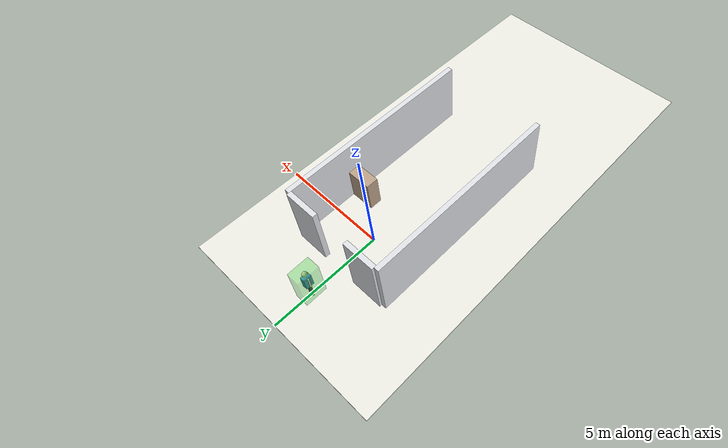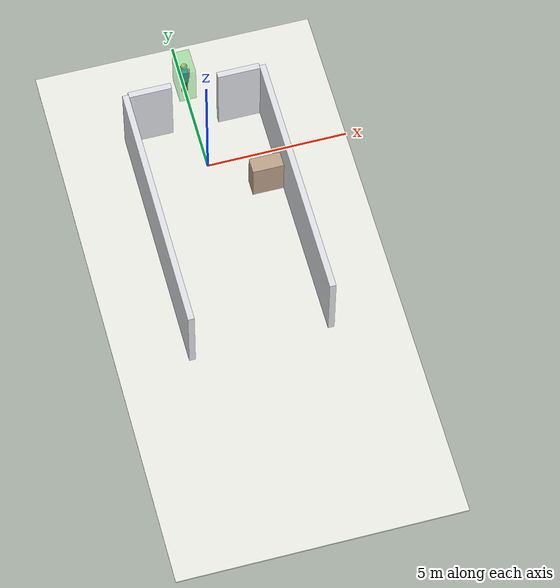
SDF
<sdf version="1.7">
 <world name="elevator_yield">
  <physics type="ode">
   <max_step_size>0.015625</max_step_size>
   <real_time_update_rate>64</real_time_update_rate>
  </physics>
  <gravity>0 0 -9.8</gravity>
  <scene>
   <ambient>0.80 0.80 0.80 1</ambient>
   <background>0.95 0.96 0.97 1</background>
   <shadows>true</shadows>
  </scene>
  <light name="sun" type="directional">
   <pose>0 0 10 0 0 0</pose>
   <diffuse>0.9 0.9 0.9 1</diffuse>
   <specular>0.2 0.2 0.2 1</specular>
   <attenuation>
    <range>1000</range>
    <constant>0.9</constant>
    <linear>0.01</linear>
    <quadratic>0.001</quadratic>
   </attenuation>
   <direction>-0.25 0.10 -0.95</direction>
  </light>
  <model name="scene_floor">
   <static>true</static>
   <link name="link">
    <collision name="collision">
     <pose>0 -5 -0.03 0 0 0</pose>
     <geometry><box><size>10 20 0.06</size></box></geometry>
    </collision>
    <visual name="visual">
     <pose>0 -5 -0.03 0 0 0</pose>
     <geometry><box><size>10 20 0.06</size></box></geometry>
     <material><ambient>0.88 0.88 0.86 1</ambient><diffuse>0.93 0.93 0.90 1</diffuse></material>
    </visual>
   </link>
  </model>
  <model name="left_door_side_wall">
   <static>true</static>
   <link name="link">
    <collision name="collision">
     <pose>-1.57 1.74 1.45 0 0 0</pose>
     <geometry><box><size>1.50 0.22 2.90</size></box></geometry>
    </collision>
    <visual name="visual">
     <pose>-1.57 1.74 1.45 0 0 0</pose>
     <geometry><box><size>1.50 0.22 2.90</size></box></geometry>
     <material><ambient>0.82 0.83 0.85 1</ambient><diffuse>0.88 0.89 0.91 1</diffuse></material>
    </visual>
   </link>
  </model>
  <model name="right_door_side_wall">
   <static>true</static>
   <link name="link">
    <collision name="collision">
     <pose>1.57 1.74 1.45 0 0 0</pose>
     <geometry><box><size>1.50 0.22 2.90</size></box></geometry>
    </collision>
    <visual name="visual">
     <pose>1.57 1.74 1.45 0 0 0</pose>
     <geometry><box><size>1.50 0.22 2.90</size></box></geometry>
     <material><ambient>0.82 0.83 0.85 1</ambient><diffuse>0.88 0.89 0.91 1</diffuse></material>
    </visual>
   </link>
  </model>
  <model name="human_in_elevator">
   <static>false</static>
   <pose>0.000004 3.219430 0.474502 0 0 -1.556373</pose>
   <link name="torso_link">
    <gravity>false</gravity>
    <pose>0 0 0.56 0 0 0</pose>
    <inertial>
     <mass>8.0</mass>
     <inertia><ixx>0.25</ixx><iyy>0.20</iyy><izz>0.18</izz><ixy>0</ixy><ixz>0</ixz><iyz>0</iyz></inertia>
    </inertial>
    <visual name="torso_visual">
     <geometry><box><size>0.34 0.22 0.62</size></box></geometry>
     <material><ambient>0.18 0.44 0.74 1</ambient><diffuse>0.24 0.52 0.80 1</diffuse></material>
    </visual>
   </link>
   <link name="head_link">
    <gravity>false</gravity>
    <pose>0 0 1.07 0 0 0</pose>
    <inertial>
     <mass>1.5</mass>
     <inertia><ixx>0.02</ixx><iyy>0.02</iyy><izz>0.02</izz><ixy>0</ixy><ixz>0</ixz><iyz>0</iyz></inertia>
    </inertial>
    <visual name="head_visual">
     <geometry><sphere><radius>0.11</radius></sphere></geometry>
     <material><ambient>0.86 0.73 0.63 1</ambient><diffuse>0.90 0.78 0.68 1</diffuse></material>
    </visual>
   </link>
   <link name="left_leg_link">
    <gravity>false</gravity>
    <pose>0.00 0.06 0.29 0 0 0</pose>
    <inertial>
     <mass>2.0</mass>
     <inertia><ixx>0.10</ixx><iyy>0.03</iyy><izz>0.10</izz><ixy>0</ixy><ixz>0</ixz><iyz>0</iyz></inertia>
    </inertial>
    <visual name="left_leg_visual">
     <pose>0 0 -0.38 0 0 0</pose>
     <geometry><cylinder><radius>0.055</radius><length>0.76</length></cylinder></geometry>
     <material><ambient>0.14 0.16 0.20 1</ambient><diffuse>0.18 0.20 0.26 1</diffuse></material>
    </visual>
   </link>
   <link name="right_leg_link">
    <gravity>false</gravity>
    <pose>0.00 -0.06 0.29 0 0 0</pose>
    <inertial>
     <mass>2.0</mass>
     <inertia><ixx>0.10</ixx><iyy>0.03</iyy><izz>0.10</izz><ixy>0</ixy><ixz>0</ixz><iyz>0</iyz></inertia>
    </inertial>
    <visual name="right_leg_visual">
     <pose>0 0 -0.38 0 0 0</pose>
     <geometry><cylinder><radius>0.055</radius><length>0.76</length></cylinder></geometry>
     <material><ambient>0.14 0.16 0.20 1</ambient><diffuse>0.18 0.20 0.26 1</diffuse></material>
    </visual>
   </link>
   <link name="left_arm_link">
    <gravity>false</gravity>
    <pose>0.00 0.15 0.85 0 0 0</pose>
    <inertial>
     <mass>1.2</mass>
     <inertia><ixx>0.04</ixx><iyy>0.015</iyy><izz>0.04</izz><ixy>0</ixy><ixz>0</ixz><iyz>0</iyz></inertia>
    </inertial>
    <visual name="left_arm_visual">
     <pose>0 0 -0.28 0 0 0</pose>
     <geometry><cylinder><radius>0.04</radius><length>0.56</length></cylinder></geometry>
     <material><ambient>0.86 0.73 0.63 1</ambient><diffuse>0.90 0.78 0.68 1</diffuse></material>
    </visual>
   </link>
   <link name="right_arm_link">
    <gravity>false</gravity>
    <pose>0.00 -0.15 0.85 0 0 0</pose>
    <inertial>
     <mass>1.2</mass>
     <inertia><ixx>0.04</ixx><iyy>0.015</iyy><izz>0.04</izz><ixy>0</ixy><ixz>0</ixz><iyz>0</iyz></inertia>
    </inertial>
    <visual name="right_arm_visual">
     <pose>0 0 -0.28 0 0 0</pose>
     <geometry><cylinder><radius>0.04</radius><length>0.56</length></cylinder></geometry>
     <material><ambient>0.86 0.73 0.63 1</ambient><diffuse>0.90 0.78 0.68 1</diffuse></material>
    </visual>
   </link>
   <joint name="head_joint" type="fixed"><parent>torso_link</parent><child>head_link</child></joint>
   <joint name="left_leg_joint" type="revolute">
    <parent>torso_link</parent>
    <child>left_leg_link</child>
    <axis>
     <xyz>0 1 0</xyz>
     <limit><lower>-0.50</lower><upper>0.50</upper></limit>
     <dynamics><damping>1.0</damping></dynamics>
    </axis>
   </joint>
   <joint name="right_leg_joint" type="revolute">
    <parent>torso_link</parent>
    <child>right_leg_link</child>
    <axis>
     <xyz>0 1 0</xyz>
     <limit><lower>-0.50</lower><upper>0.50</upper></limit>
     <dynamics><damping>1.0</damping></dynamics>
    </axis>
   </joint>
   <joint name="left_arm_joint" type="revolute">
    <parent>torso_link</parent>
    <child>left_arm_link</child>
    <axis>
     <xyz>0 1 0</xyz>
     <limit><lower>-0.90</lower><upper>0.90</upper></limit>
     <dynamics><damping>0.8</damping></dynamics>
    </axis>
   </joint>
   <joint name="right_arm_joint" type="revolute">
    <parent>torso_link</parent>
    <child>right_arm_link</child>
    <axis>
     <xyz>0 1 0</xyz>
     <limit><lower>-0.90</lower><upper>0.90</upper></limit>
     <dynamics><damping>0.8</damping></dynamics>
    </axis>
   </joint>
   <plugin filename="gz-sim-joint-position-controller-system" name="gz::sim::systems::JointPositionController">
    <joint_name>left_arm_joint</joint_name>
    <topic>/human_in_elevator/left_arm_joint_cmd</topic>
    <p_gain>12</p_gain>
    <d_gain>0.8</d_gain>
    <cmd_max>20</cmd_max>
    <cmd_min>-20</cmd_min>
   </plugin>
   <plugin filename="gz-sim-joint-position-controller-system" name="gz::sim::systems::JointPositionController">
    <joint_name>right_arm_joint</joint_name>
    <topic>/human_in_elevator/right_arm_joint_cmd</topic>
    <p_gain>12</p_gain>
    <d_gain>0.8</d_gain>
    <cmd_max>20</cmd_max>
    <cmd_min>-20</cmd_min>
   </plugin>
   <plugin filename="gz-sim-joint-position-controller-system" name="gz::sim::systems::JointPositionController">
    <joint_name>left_leg_joint</joint_name>
    <topic>/human_in_elevator/left_leg_joint_cmd</topic>
    <p_gain>14</p_gain>
    <d_gain>1.0</d_gain>
    <cmd_max>20</cmd_max>
    <cmd_min>-20</cmd_min>
   </plugin>
   <plugin filename="gz-sim-joint-position-controller-system" name="gz::sim::systems::JointPositionController">
    <joint_name>right_leg_joint</joint_name>
    <topic>/human_in_elevator/right_leg_joint_cmd</topic>
    <p_gain>14</p_gain>
    <d_gain>1.0</d_gain>
    <cmd_max>20</cmd_max>
    <cmd_min>-20</cmd_min>
   </plugin>
  </model>
  <model name="human_collision_proxy">
   <static>true</static>
   <pose>0.000004 3.219430 0.960000 0 0 -1.556373</pose>
   <link name="collision_link">
    <collision name="body_collision"><geometry><box><size>0.95 0.60 1.72</size></box></geometry></collision>
    <visual name="debug_visual">
     <geometry><box><size>0.95 0.60 1.72</size></box></geometry>
     <material><ambient>0.2 0.8 0.2 0.35</ambient><diffuse>0.2 0.8 0.2 0.35</diffuse></material>
     <transparency>0.65</transparency>
    </visual>
   </link>
  </model>
  <model name="left_corridor_wall">
   <static>true</static>
   <link name="link">
    <collision name="collision">
     <pose>-2.43 -2.75 1.45 0 0 0</pose>
     <geometry><box><size>0.22 9.00 2.90</size></box></geometry>
    </collision>
    <visual name="visual">
     <pose>-2.43 -2.75 1.45 0 0 0</pose>
     <geometry><box><size>0.22 9.00 2.90</size></box></geometry>
     <material><ambient>0.82 0.83 0.85 1</ambient><diffuse>0.88 0.89 0.91 1</diffuse></material>
    </visual>
   </link>
  </model>
  <model name="right_corridor_wall">
   <static>true</static>
   <link name="link">
    <collision name="collision">
     <pose>2.43 -2.75 1.45 0 0 0</pose>
     <geometry><box><size>0.22 9.00 2.90</size></box></geometry>
    </collision>
    <visual name="visual">
     <pose>2.43 -2.75 1.45 0 0 0</pose>
     <geometry><box><size>0.22 9.00 2.90</size></box></geometry>
     <material><ambient>0.82 0.83 0.85 1</ambient><diffuse>0.88 0.89 0.91 1</diffuse></material>
    </visual>
   </link>
  </model>
  <model name="rear_obstacle">
   <static>true</static>
   <link name="link">
    <collision name="collision">
     <pose>1.77 -1.26 0.75 0 0 0</pose>
     <geometry><box><size>1.10 0.55 1.50</size></box></geometry>
    </collision>
    <visual name="visual">
     <pose>1.77 -1.26 0.75 0 0 0</pose>
     <geometry><box><size>1.10 0.55 1.50</size></box></geometry>
     <material><ambient>0.66 0.56 0.46 1</ambient><diffuse>0.74 0.64 0.54 1</diffuse></material>
    </visual>
   </link>
  </model>
 </world>
</sdf>
